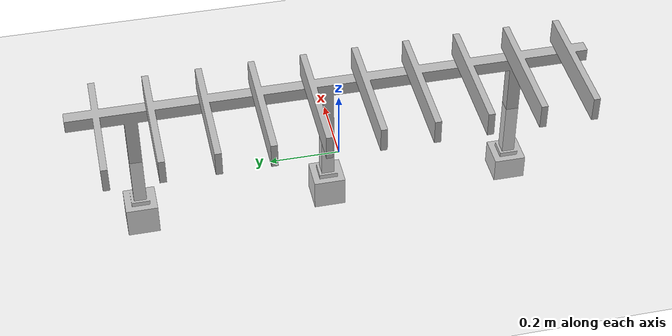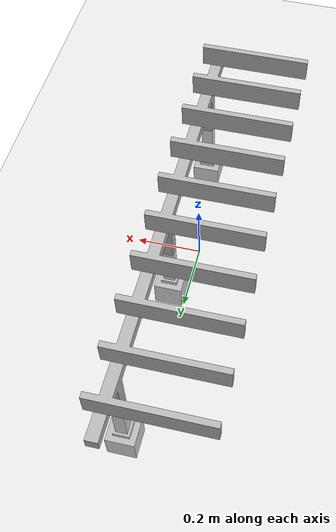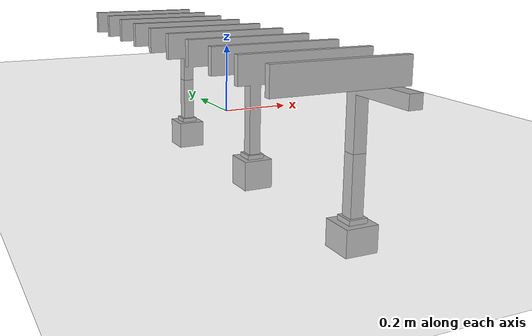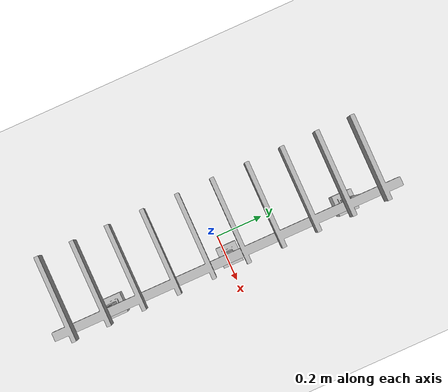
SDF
<sdf version="1.4">
 <world name="default">
  <light name="sun" type="directional">
   <pose>0 0 10 0 -0 0</pose>
   <diffuse>0.8 0.8 0.8 1</diffuse>
   <specular>0.2 0.2 0.2 1</specular>
   <attenuation>
    <range>1000</range>
    <constant>0.9</constant>
    <linear>0.01</linear>
    <quadratic>0.001</quadratic>
   </attenuation>
   <direction>-0.5 0.1 -0.9</direction>
  </light>
  <model name="ground_plane">
   <static>1</static>
   <link name="link">
    <collision name="collision">
     <geometry><plane><normal>0 0 1</normal><size>100 100</size></plane></geometry>
     <surface><friction><ode><mu>100</mu><mu2>50</mu2></ode></friction></surface>
    </collision>
    <visual name="visual">
     <cast_shadows>0</cast_shadows>
     <geometry><plane><normal>0 0 1</normal><size>100 100</size></plane></geometry>
     <material>
      <script><uri>file://media/materials/scripts/gazebo.material</uri><name>Gazebo/Grey</name></script>
     </material>
    </visual>
    <velocity_decay><linear>0</linear><angular>0</angular></velocity_decay>
   </link>
  </model>
  <physics type="ode">
   <max_step_size>0.001</max_step_size>
   <real_time_factor>1</real_time_factor>
   <real_time_update_rate>1000</real_time_update_rate>
   <gravity>0 0 -9.8</gravity>
  </physics>
  <scene><ambient>0.4 0.4 0.4 1</ambient><background>0.7 0.7 0.7 1</background><shadows>1</shadows></scene>
  <spherical_coordinates>
   <surface_model>EARTH_WGS84</surface_model>
   <latitude_deg>0</latitude_deg>
   <longitude_deg>0</longitude_deg>
   <elevation>0</elevation>
   <heading_deg>0</heading_deg>
  </spherical_coordinates>
  <model name="bunny">
   <static>1</static>
   <link name="link">
    <collision name="collision">
     <geometry><box><size>0.735095 0.735095 0.735095</size></box></geometry>
    </collision>
    <visual name="visual">
     <geometry><mesh><uri>model://bridge_pier/meshes/model.dae</uri><scale>1.5 1.5 1.5</scale></mesh></geometry>
    </visual>
    <velocity_decay><linear>0</linear><angular>0</angular></velocity_decay>
   </link>
  </model>
  <light name="user_point_light_0" type="point">
   <pose>-1.53304 1 1 0 -0 0</pose>
   <diffuse>0.5 0.5 0.5 1</diffuse>
   <specular>0.1 0.1 0.1 1</specular>
   <attenuation>
    <range>20</range>
    <constant>0.5</constant>
    <linear>0.01</linear>
    <quadratic>0.001</quadratic>
   </attenuation>
   <cast_shadows>0</cast_shadows>
   <direction>0 0 -1</direction>
  </light>
 </world>
</sdf>
